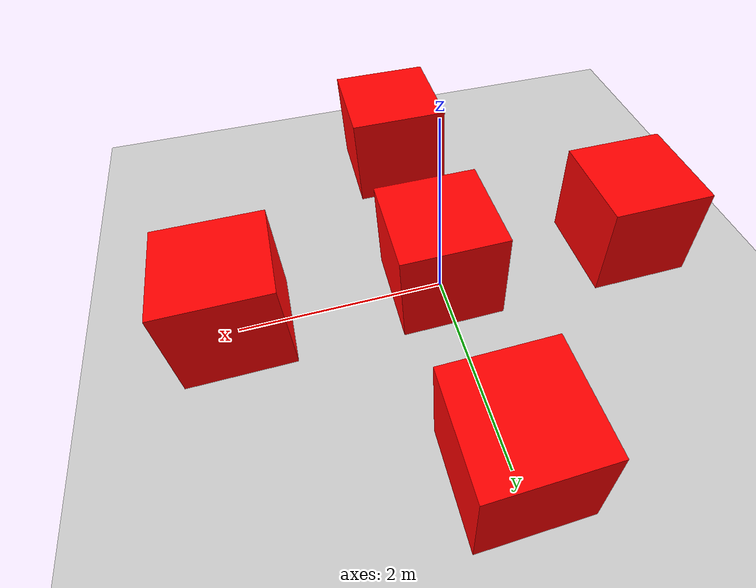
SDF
<?xml version="1.0" ?>
<sdf version='1.10'>
  <world name="lab">
    <physics name='1ms' type='ignored'>
      <max_step_size>0.001</max_step_size>
      <real_time_factor>1</real_time_factor>
      <real_time_update_rate>1000</real_time_update_rate>
    </physics>
    <plugin name='gz::sim::systems::Physics' filename='gz-sim-physics-system'/>
    <plugin name='gz::sim::systems::UserCommands' filename='gz-sim-user-commands-system'/>
    <plugin name='gz::sim::systems::SceneBroadcaster' filename='gz-sim-scene-broadcaster-system'/>
    <plugin name='gz::sim::systems::Contact' filename='gz-sim-contact-system'/>
    <plugin
      filename="gz-sim-logical-camera-system"
      name="gz::sim::systems::LogicalCamera">
      <render_engine>ogre2</render_engine>
    </plugin>
    <plugin
      filename="gz-sim-physics-system"
      name="gz::sim::systems::Physics">
    </plugin>
    <plugin
      filename="gz-sim-user-commands-system"
      name="gz::sim::systems::UserCommands">
    </plugin>
    <plugin
      filename="gz-sim-scene-broadcaster-system"
      name="gz::sim::systems::SceneBroadcaster">
    </plugin>
    <plugin
      filename="gz-sim-sensors-system"
      name="gz::sim::systems::Sensors">
      <render_engine>ogre2</render_engine>
    </plugin>
    <plugin filename="gz-sim-contact-system"
      name="gz::sim::systems::Contact">
    </plugin>
    <gravity>0 0 -9.8000000000000007</gravity>
    <magnetic_field>5.5644999999999998e-06 2.2875799999999999e-05 -4.2388400000000002e-05</magnetic_field>
    <atmosphere type='adiabatic'/>
    <scene>
      <ambient>0.400000006 0.400000006 0.400000006 1</ambient>
      <background>0.699999988 0.699999988 0.699999988 1</background>
      <shadows>true</shadows>
    </scene>
    <model name='ground_plane'>
      <static>true</static>
      <link name='link'>
        <collision name='collision'>
          <geometry>
            <plane>
              <normal>0 0 1</normal>
              <size>100 100</size>
            </plane>
          </geometry>
          <surface>
            <friction>
              <ode/>
            </friction>
            <bounce/>
            <contact/>
          </surface>
        </collision>
        <visual name='visual'>
          <geometry>
            <plane>
              <normal>0 0 1</normal>
              <size>100 100</size>
            </plane>
          </geometry>
          <material>
            <ambient>0.800000012 0.800000012 0.800000012 1</ambient>
            <diffuse>0.800000012 0.800000012 0.800000012 1</diffuse>
            <specular>0.800000012 0.800000012 0.800000012 1</specular>
          </material>
        </visual>
        <pose>0 0 0 0 0 0</pose>
        <inertial>
          <pose>0 0 0 0 0 0</pose>
          <mass>1</mass>
          <inertia>
            <ixx>1</ixx>
            <ixy>0</ixy>
            <ixz>0</ixz>
            <iyy>1</iyy>
            <iyz>0</iyz>
            <izz>1</izz>
          </inertia>
        </inertial>
        <enable_wind>false</enable_wind>
      </link>
      <pose>0 0 0 0 0 0</pose>
      <self_collide>false</self_collide>
    </model>
    <light name='sun' type='directional'>
      <pose>0 0 10 0 0 0</pose>
      <cast_shadows>true</cast_shadows>
      <intensity>1</intensity>
      <direction>-0.5 0.10000000000000001 -0.90000000000000002</direction>
      <diffuse>0.800000012 0.800000012 0.800000012 1</diffuse>
      <specular>0.200000003 0.200000003 0.200000003 1</specular>
      <attenuation>
        <range>1000</range>
        <linear>0.01</linear>
        <constant>0.90000000000000002</constant>
        <quadratic>0.001</quadratic>
      </attenuation>
      <spot>
        <inner_angle>0</inner_angle>
        <outer_angle>0</outer_angle>
        <falloff>0</falloff>
      </spot>
    </light>

    <model name="box_1">
      <pose>0 0 0.5 0 0 0</pose>
      <link name="box_1_link">
        <gravity>false</gravity>
        <inertial>
          <inertia>
            <ixx>0.16666</ixx>
            <ixy>0</ixy>
            <ixz>0</ixz>
            <iyy>0.16666</iyy>
            <iyz>0</iyz>
            <izz>0.16666</izz>
          </inertia>
          <mass>1.0</mass>
        </inertial>
        <collision name="box_1_collision">
          <geometry>
            <box>
              <size>1 1 1</size>
            </box>
          </geometry>
        </collision>

        <visual name="box_1_visual">
          <geometry>
            <box>
              <size>1 1 1</size>
            </box>
          </geometry>
          <material>
            <ambient>1 0 0 1</ambient>
            <diffuse>1 0 0 1</diffuse>
            <specular>1 0 0 1</specular>
          </material>
        </visual>
        <sensor name='box_1_contact_sensor' type='contact'>
          <contact>
            <collision>box_1_collision</collision>
          </contact>
        </sensor>
      </link>
      <plugin name="ariac_sensors::VacuumGripperPlugin" filename="libVacuumGripperPlugin.so">
        <gripper_link>box_1_link</gripper_link>
        <gz_contact_topic>/world/lab/model/box_1/link/box_1_link/sensor/box_1_contact_sensor/contact</gz_contact_topic>
      </plugin>
    </model>

    <model name="box_2">
      <pose>0 -2 0.5 0 0 0</pose>
      <link name="box_2_link">
        <gravity>false</gravity>
        <inertial>
          <inertia>
            <ixx>0.16666</ixx>
            <ixy>0</ixy>
            <ixz>0</ixz>
            <iyy>0.16666</iyy>
            <iyz>0</iyz>
            <izz>0.16666</izz>
          </inertia>
          <mass>1.0</mass>
        </inertial>
        <collision name="box_2_collision">
          <geometry>
            <box>
              <size>1 1 1</size>
            </box>
          </geometry>
        </collision>

        <visual name="box_2_visual">
          <geometry>
            <box>
              <size>1 1 1</size>
            </box>
          </geometry>
          <material>
            <ambient>1 0 0 1</ambient>
            <diffuse>1 0 0 1</diffuse>
            <specular>1 0 0 1</specular>
          </material>
        </visual>
      </link>
    </model>

    <model name="box_3">
      <pose>0 2 0.5 0 0 0</pose>
      <link name="box_3_link">
        <gravity>false</gravity>
        <inertial>
          <inertia>
            <ixx>0.16666</ixx>
            <ixy>0</ixy>
            <ixz>0</ixz>
            <iyy>0.16666</iyy>
            <iyz>0</iyz>
            <izz>0.16666</izz>
          </inertia>
          <mass>1.0</mass>
        </inertial>
        <collision name="box_3_collision">
          <geometry>
            <box>
              <size>1 1 1</size>
            </box>
          </geometry>
        </collision>

        <visual name="box_3_visual">
          <geometry>
            <box>
              <size>1 1 1</size>
            </box>
          </geometry>
          <material>
            <ambient>1 0 0 1</ambient>
            <diffuse>1 0 0 1</diffuse>
            <specular>1 0 0 1</specular>
          </material>
        </visual>
      </link>
    </model>

    <model name="box_4">
      <pose>-2 0 0.5 0 0 0</pose>
      <link name="box_4_link">
        <gravity>false</gravity>
        <inertial>
          <inertia>
            <ixx>0.16666</ixx>
            <ixy>0</ixy>
            <ixz>0</ixz>
            <iyy>0.16666</iyy>
            <iyz>0</iyz>
            <izz>0.16666</izz>
          </inertia>
          <mass>1.0</mass>
        </inertial>
        <collision name="box_4_collision">
          <geometry>
            <box>
              <size>1 1 1</size>
            </box>
          </geometry>
        </collision>

        <visual name="box_4_visual">
          <geometry>
            <box>
              <size>1 1 1</size>
            </box>
          </geometry>
          <material>
            <ambient>1 0 0 1</ambient>
            <diffuse>1 0 0 1</diffuse>
            <specular>1 0 0 1</specular>
          </material>
        </visual>
      </link>
    </model>

    <model name="box_5">
      <pose>2 0 0.5 0 0 0</pose>
      <link name="box_5_link">
        <gravity>false</gravity>
        <inertial>
          <inertia>
            <ixx>0.16666</ixx>
            <ixy>0</ixy>
            <ixz>0</ixz>
            <iyy>0.16666</iyy>
            <iyz>0</iyz>
            <izz>0.16666</izz>
          </inertia>
          <mass>1.0</mass>
        </inertial>
        <collision name="box_5_collision">
          <geometry>
            <box>
              <size>1 1 1</size>
            </box>
          </geometry>
        </collision>

        <visual name="box_5_visual">
          <geometry>
            <box>
              <size>1 1 1</size>
            </box>
          </geometry>
          <material>
            <ambient>1 0 0 1</ambient>
            <diffuse>1 0 0 1</diffuse>
            <specular>1 0 0 1</specular>
          </material>
        </visual>
      </link>
    </model>
    <gazebo reference="box_1_link">
        <turnGravityOff>true</turnGravityOff>
    </gazebo>
    <gazebo reference="box_2_link">
        <turnGravityOff>true</turnGravityOff>
    </gazebo>
    <gazebo reference="box_3_link">
        <turnGravityOff>true</turnGravityOff>
    </gazebo>
    <gazebo reference="box_4_link">
        <turnGravityOff>true</turnGravityOff>
    </gazebo>
    <gazebo reference="box_5_link">
        <turnGravityOff>true</turnGravityOff>
    </gazebo>
  </world>
</sdf>
